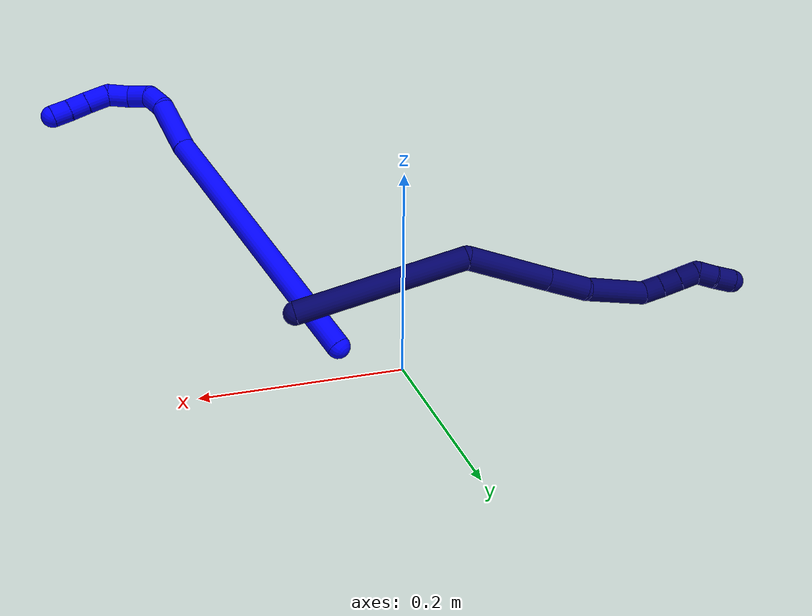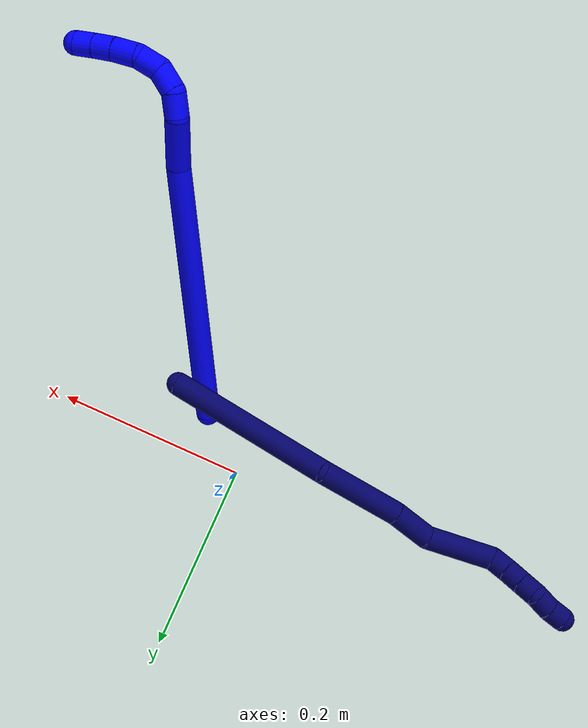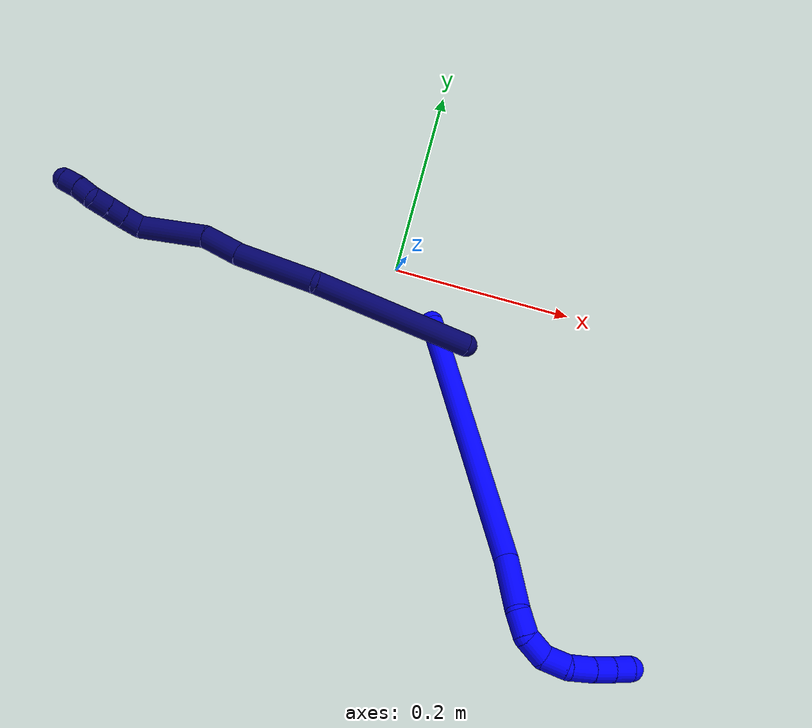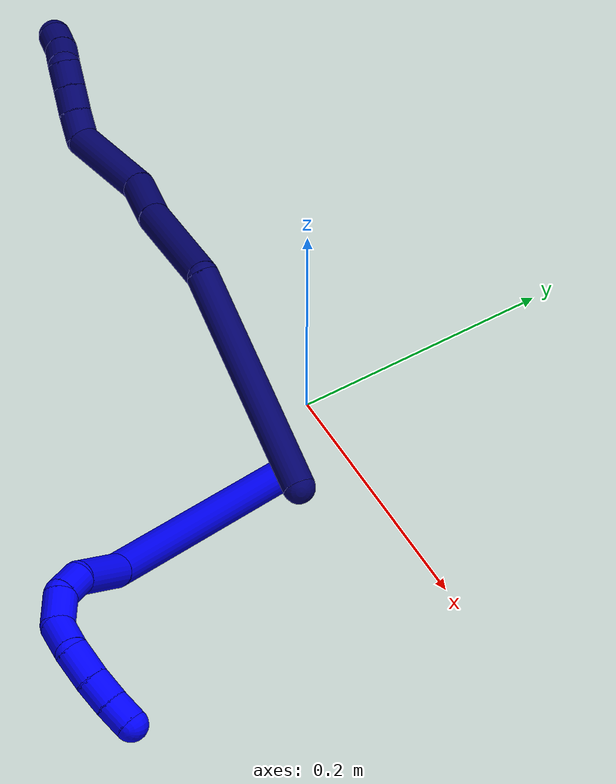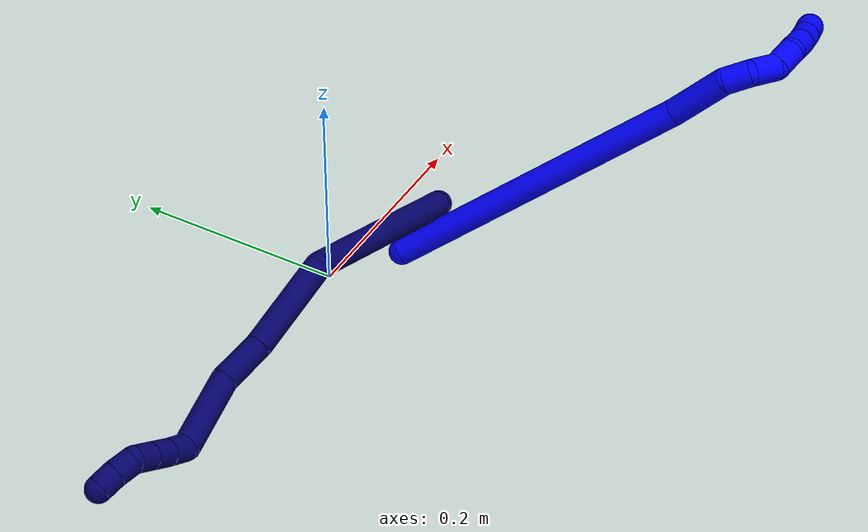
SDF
<sdf version="1.7">
 <world name="default">
  <model name="1">
   <static>0</static>
   <link name="1">
    <collision name="collision-cylinder-e_1_1_4">
     <pose>0.01469 -0.020997 0.14681 0.14206 0.098733 0.007031</pose>
     <geometry><cylinder><radius>0.0125</radius><length>0.298061</length></cylinder></geometry>
     <surface>
      <friction><ode><mu>1.16</mu><mu2>1.16</mu2><slip1>0</slip1><slip2>0</slip2></ode></friction>
      <contact><ode><kp>1e+06</kp><kd>1</kd><max_vel>0</max_vel><min_depth>0.001</min_depth></ode></contact>
     </surface>
    </collision>
    <visual name="visual-cylinder-e_1_1_4">
     <pose>0.01469 -0.020997 0.14681 0.14206 0.098733 0.007031</pose>
     <geometry><cylinder><radius>0.0125</radius><length>0.298061</length></cylinder></geometry>
     <material><ambient>0 0 1 1</ambient></material>
    </visual>
    <collision name="collision-cylinder-e_2_4_5">
     <pose>0.034722 -0.050012 0.320946 0.285379 0.185399 0.02671</pose>
     <geometry><cylinder><radius>0.0125</radius><length>0.057946</length></cylinder></geometry>
     <surface>
      <friction><ode><mu>1.16</mu><mu2>1.16</mu2><slip1>0</slip1><slip2>0</slip2></ode></friction>
      <contact><ode><kp>1e+06</kp><kd>1</kd><max_vel>0</max_vel><min_depth>0.001</min_depth></ode></contact>
     </surface>
    </collision>
    <visual name="visual-cylinder-e_2_4_5">
     <pose>0.034722 -0.050012 0.320946 0.285379 0.185399 0.02671</pose>
     <geometry><cylinder><radius>0.0125</radius><length>0.057946</length></cylinder></geometry>
     <material><ambient>0 0 1 1</ambient></material>
    </visual>
    <collision name="collision-cylinder-e_3_5_6">
     <pose>0.040855 -0.056942 0.361068 -0.084671 0.061662 -0.002613</pose>
     <geometry><cylinder><radius>0.0125</radius><length>0.025736</length></cylinder></geometry>
     <surface>
      <friction><ode><mu>1.16</mu><mu2>1.16</mu2><slip1>0</slip1><slip2>0</slip2></ode></friction>
      <contact><ode><kp>1e+06</kp><kd>1</kd><max_vel>0</max_vel><min_depth>0.001</min_depth></ode></contact>
     </surface>
    </collision>
    <visual name="visual-cylinder-e_3_5_6">
     <pose>0.040855 -0.056942 0.361068 -0.084671 0.061662 -0.002613</pose>
     <geometry><cylinder><radius>0.0125</radius><length>0.025736</length></cylinder></geometry>
     <material><ambient>0 0 1 1</ambient></material>
    </visual>
    <collision name="collision-cylinder-e_4_6_7">
     <pose>0.036616 -0.050254 0.384391 -0.489094 -0.399334 0.10091</pose>
     <geometry><cylinder><radius>0.0125</radius><length>0.025885</length></cylinder></geometry>
     <surface>
      <friction><ode><mu>1.16</mu><mu2>1.16</mu2><slip1>0</slip1><slip2>0</slip2></ode></friction>
      <contact><ode><kp>1e+06</kp><kd>1</kd><max_vel>0</max_vel><min_depth>0.001</min_depth></ode></contact>
     </surface>
    </collision>
    <visual name="visual-cylinder-e_4_6_7">
     <pose>0.036616 -0.050254 0.384391 -0.489094 -0.399334 0.10091</pose>
     <geometry><cylinder><radius>0.0125</radius><length>0.025885</length></cylinder></geometry>
     <material><ambient>0 0 1 1</ambient></material>
    </visual>
    <collision name="collision-cylinder-e_5_7_8">
     <pose>0.022232 -0.043344 0.402956 -0.161236 -0.854338 0.073521</pose>
     <geometry><cylinder><radius>0.0125</radius><length>0.024802</length></cylinder></geometry>
     <surface>
      <friction><ode><mu>1.16</mu><mu2>1.16</mu2><slip1>0</slip1><slip2>0</slip2></ode></friction>
      <contact><ode><kp>1e+06</kp><kd>1</kd><max_vel>0</max_vel><min_depth>0.001</min_depth></ode></contact>
     </surface>
    </collision>
    <visual name="visual-cylinder-e_5_7_8">
     <pose>0.022232 -0.043344 0.402956 -0.161236 -0.854338 0.073521</pose>
     <geometry><cylinder><radius>0.0125</radius><length>0.024802</length></cylinder></geometry>
     <material><ambient>0 0 1 1</ambient></material>
    </visual>
    <collision name="collision-cylinder-e_6_8_9">
     <pose>0.001599 -0.037132 0.414829 -0.907283 -1.0665 0.56045</pose>
     <geometry><cylinder><radius>0.0125</radius><length>0.02577</length></cylinder></geometry>
     <surface>
      <friction><ode><mu>1.16</mu><mu2>1.16</mu2><slip1>0</slip1><slip2>0</slip2></ode></friction>
      <contact><ode><kp>1e+06</kp><kd>1</kd><max_vel>0</max_vel><min_depth>0.001</min_depth></ode></contact>
     </surface>
    </collision>
    <visual name="visual-cylinder-e_6_8_9">
     <pose>0.001599 -0.037132 0.414829 -0.907283 -1.0665 0.56045</pose>
     <geometry><cylinder><radius>0.0125</radius><length>0.02577</length></cylinder></geometry>
     <material><ambient>0 0 1 1</ambient></material>
    </visual>
    <collision name="collision-cylinder-e_7_9_10">
     <pose>-0.019461 -0.028372 0.421044 -1.01745 -1.1369 0.684445</pose>
     <geometry><cylinder><radius>0.0125</radius><length>0.021556</length></cylinder></geometry>
     <surface>
      <friction><ode><mu>1.16</mu><mu2>1.16</mu2><slip1>0</slip1><slip2>0</slip2></ode></friction>
      <contact><ode><kp>1e+06</kp><kd>1</kd><max_vel>0</max_vel><min_depth>0.001</min_depth></ode></contact>
     </surface>
    </collision>
    <visual name="visual-cylinder-e_7_9_10">
     <pose>-0.019461 -0.028372 0.421044 -1.01745 -1.1369 0.684445</pose>
     <geometry><cylinder><radius>0.0125</radius><length>0.021556</length></cylinder></geometry>
     <material><ambient>0 0 1 1</ambient></material>
    </visual>
    <collision name="collision-cylinder-e_8_10_2">
     <pose>-0.038668 -0.021519 0.42557 -0.949847 -1.19812 0.675231</pose>
     <geometry><cylinder><radius>0.0125</radius><length>0.020246</length></cylinder></geometry>
     <surface>
      <friction><ode><mu>1.16</mu><mu2>1.16</mu2><slip1>0</slip1><slip2>0</slip2></ode></friction>
      <contact><ode><kp>1e+06</kp><kd>1</kd><max_vel>0</max_vel><min_depth>0.001</min_depth></ode></contact>
     </surface>
    </collision>
    <visual name="visual-cylinder-e_8_10_2">
     <pose>-0.038668 -0.021519 0.42557 -0.949847 -1.19812 0.675231</pose>
     <geometry><cylinder><radius>0.0125</radius><length>0.020246</length></cylinder></geometry>
     <material><ambient>0 0 1 1</ambient></material>
    </visual>
    <collision name="collision-sphere-2">
     <pose>-0.048096 -0.018521 0.427714 0 -0 0</pose>
     <geometry><sphere><radius>0.0125</radius></sphere></geometry>
     <surface>
      <friction><ode><mu>1.16</mu><mu2>1.16</mu2><slip1>0</slip1><slip2>0</slip2></ode></friction>
      <contact><ode><kp>1e+06</kp><kd>1</kd><max_vel>0</max_vel><min_depth>0.001</min_depth></ode></contact>
     </surface>
    </collision>
    <visual name="visual-sphere-2">
     <pose>-0.048096 -0.018521 0.427714 0 -0 0</pose>
     <geometry><sphere><radius>0.0125</radius></sphere></geometry>
     <material><ambient>0 0 1 1</ambient></material>
    </visual>
    <collision name="collision-sphere-10">
     <pose>-0.02924 -0.024517 0.423426 0 -0 0</pose>
     <geometry><sphere><radius>0.0125</radius></sphere></geometry>
     <surface>
      <friction><ode><mu>1.16</mu><mu2>1.16</mu2><slip1>0</slip1><slip2>0</slip2></ode></friction>
      <contact><ode><kp>1e+06</kp><kd>1</kd><max_vel>0</max_vel><min_depth>0.001</min_depth></ode></contact>
     </surface>
    </collision>
    <visual name="visual-sphere-10">
     <pose>-0.02924 -0.024517 0.423426 0 -0 0</pose>
     <geometry><sphere><radius>0.0125</radius></sphere></geometry>
     <material><ambient>0 0 1 1</ambient></material>
    </visual>
    <collision name="collision-sphere-9">
     <pose>-0.009682 -0.032227 0.418663 0 -0 0</pose>
     <geometry><sphere><radius>0.0125</radius></sphere></geometry>
     <surface>
      <friction><ode><mu>1.16</mu><mu2>1.16</mu2><slip1>0</slip1><slip2>0</slip2></ode></friction>
      <contact><ode><kp>1e+06</kp><kd>1</kd><max_vel>0</max_vel><min_depth>0.001</min_depth></ode></contact>
     </surface>
    </collision>
    <visual name="visual-sphere-9">
     <pose>-0.009682 -0.032227 0.418663 0 -0 0</pose>
     <geometry><sphere><radius>0.0125</radius></sphere></geometry>
     <material><ambient>0 0 1 1</ambient></material>
    </visual>
    <collision name="collision-sphere-4">
     <pose>0.029381 -0.041995 0.293621 0 -0 0</pose>
     <geometry><sphere><radius>0.0125</radius></sphere></geometry>
     <surface>
      <friction><ode><mu>1.16</mu><mu2>1.16</mu2><slip1>0</slip1><slip2>0</slip2></ode></friction>
      <contact><ode><kp>1e+06</kp><kd>1</kd><max_vel>0</max_vel><min_depth>0.001</min_depth></ode></contact>
     </surface>
    </collision>
    <visual name="visual-sphere-4">
     <pose>0.029381 -0.041995 0.293621 0 -0 0</pose>
     <geometry><sphere><radius>0.0125</radius></sphere></geometry>
     <material><ambient>0 0 1 1</ambient></material>
    </visual>
    <collision name="collision-sphere-1">
     <geometry><sphere><radius>0.0125</radius></sphere></geometry>
     <surface>
      <friction><ode><mu>1.16</mu><mu2>1.16</mu2><slip1>0</slip1><slip2>0</slip2></ode></friction>
      <contact><ode><kp>1e+06</kp><kd>1</kd><max_vel>0</max_vel><min_depth>0.001</min_depth></ode></contact>
     </surface>
    </collision>
    <visual name="visual-sphere-1">
     <geometry><sphere><radius>0.0125</radius></sphere></geometry>
     <material><ambient>0 0 1 1</ambient></material>
    </visual>
    <collision name="collision-sphere-8">
     <pose>0.01288 -0.042037 0.410994 0 -0 0</pose>
     <geometry><sphere><radius>0.0125</radius></sphere></geometry>
     <surface>
      <friction><ode><mu>1.16</mu><mu2>1.16</mu2><slip1>0</slip1><slip2>0</slip2></ode></friction>
      <contact><ode><kp>1e+06</kp><kd>1</kd><max_vel>0</max_vel><min_depth>0.001</min_depth></ode></contact>
     </surface>
    </collision>
    <visual name="visual-sphere-8">
     <pose>0.01288 -0.042037 0.410994 0 -0 0</pose>
     <geometry><sphere><radius>0.0125</radius></sphere></geometry>
     <material><ambient>0 0 1 1</ambient></material>
    </visual>
    <collision name="collision-sphere-5">
     <pose>0.040062 -0.058028 0.34827 0 -0 0</pose>
     <geometry><sphere><radius>0.0125</radius></sphere></geometry>
     <surface>
      <friction><ode><mu>1.16</mu><mu2>1.16</mu2><slip1>0</slip1><slip2>0</slip2></ode></friction>
      <contact><ode><kp>1e+06</kp><kd>1</kd><max_vel>0</max_vel><min_depth>0.001</min_depth></ode></contact>
     </surface>
    </collision>
    <visual name="visual-sphere-5">
     <pose>0.040062 -0.058028 0.34827 0 -0 0</pose>
     <geometry><sphere><radius>0.0125</radius></sphere></geometry>
     <material><ambient>0 0 1 1</ambient></material>
    </visual>
    <collision name="collision-sphere-6">
     <pose>0.041648 -0.055856 0.373865 0 -0 0</pose>
     <geometry><sphere><radius>0.0125</radius></sphere></geometry>
     <surface>
      <friction><ode><mu>1.16</mu><mu2>1.16</mu2><slip1>0</slip1><slip2>0</slip2></ode></friction>
      <contact><ode><kp>1e+06</kp><kd>1</kd><max_vel>0</max_vel><min_depth>0.001</min_depth></ode></contact>
     </surface>
    </collision>
    <visual name="visual-sphere-6">
     <pose>0.041648 -0.055856 0.373865 0 -0 0</pose>
     <geometry><sphere><radius>0.0125</radius></sphere></geometry>
     <material><ambient>0 0 1 1</ambient></material>
    </visual>
    <collision name="collision-sphere-7">
     <pose>0.031584 -0.044651 0.394917 0 -0 0</pose>
     <geometry><sphere><radius>0.0125</radius></sphere></geometry>
     <surface>
      <friction><ode><mu>1.16</mu><mu2>1.16</mu2><slip1>0</slip1><slip2>0</slip2></ode></friction>
      <contact><ode><kp>1e+06</kp><kd>1</kd><max_vel>0</max_vel><min_depth>0.001</min_depth></ode></contact>
     </surface>
    </collision>
    <visual name="visual-sphere-7">
     <pose>0.031584 -0.044651 0.394917 0 -0 0</pose>
     <geometry><sphere><radius>0.0125</radius></sphere></geometry>
     <material><ambient>0 0 1 1</ambient></material>
    </visual>
    <inertial>
     <pose>0.01556 -0.030004 0.239948 0 -0 0</pose>
     <mass>0.5</mass>
     <inertia>
      <ixx>0.002248</ixx>
      <ixy>0</ixy>
      <ixz>0</ixz>
      <iyy>0.002242</iyy>
      <iyz>0</iyz>
      <izz>0.000133</izz>
     </inertia>
    </inertial>
   </link>
   <pose>0.053611 -0.046879 0.011493 -1.1229 -0.090207 -2.56875</pose>
  </model>
  <model name="7">
   <static>0</static>
   <link name="7">
    <collision name="collision-cylinder-e_1_1_4">
     <pose>-0.067394 -0.023497 0.057776 0.386256 -0.824086 -0.170534</pose>
     <geometry><cylinder><radius>0.0125</radius><length>0.183653</length></cylinder></geometry>
     <surface>
      <friction><ode><mu>1.16</mu><mu2>1.16</mu2><slip1>0</slip1><slip2>0</slip2></ode></friction>
      <contact><ode><kp>1e+06</kp><kd>1</kd><max_vel>0</max_vel><min_depth>0.001</min_depth></ode></contact>
     </surface>
    </collision>
    <visual name="visual-cylinder-e_1_1_4">
     <pose>-0.067394 -0.023497 0.057776 0.386256 -0.824086 -0.170534</pose>
     <geometry><cylinder><radius>0.0125</radius><length>0.183653</length></cylinder></geometry>
     <material><ambient>0.003922 0 0.403922 1</ambient></material>
    </visual>
    <collision name="collision-cylinder-e_2_4_5">
     <pose>-0.150655 -0.044848 0.159703 -0.048556 -0.34464 0.008453</pose>
     <geometry><cylinder><radius>0.0125</radius><length>0.093928</length></cylinder></geometry>
     <surface>
      <friction><ode><mu>1.16</mu><mu2>1.16</mu2><slip1>0</slip1><slip2>0</slip2></ode></friction>
      <contact><ode><kp>1e+06</kp><kd>1</kd><max_vel>0</max_vel><min_depth>0.001</min_depth></ode></contact>
     </surface>
    </collision>
    <visual name="visual-cylinder-e_2_4_5">
     <pose>-0.150655 -0.044848 0.159703 -0.048556 -0.34464 0.008453</pose>
     <geometry><cylinder><radius>0.0125</radius><length>0.093928</length></cylinder></geometry>
     <material><ambient>0.003922 0 0.403922 1</ambient></material>
    </visual>
    <collision name="collision-cylinder-e_3_5_6">
     <pose>-0.173406 -0.044661 0.224724 0.09355 -0.317269 -0.014977</pose>
     <geometry><cylinder><radius>0.0125</radius><length>0.044127</length></cylinder></geometry>
     <surface>
      <friction><ode><mu>1.16</mu><mu2>1.16</mu2><slip1>0</slip1><slip2>0</slip2></ode></friction>
      <contact><ode><kp>1e+06</kp><kd>1</kd><max_vel>0</max_vel><min_depth>0.001</min_depth></ode></contact>
     </surface>
    </collision>
    <visual name="visual-cylinder-e_3_5_6">
     <pose>-0.173406 -0.044661 0.224724 0.09355 -0.317269 -0.014977</pose>
     <geometry><cylinder><radius>0.0125</radius><length>0.044127</length></cylinder></geometry>
     <material><ambient>0.003922 0 0.403922 1</ambient></material>
    </visual>
    <collision name="collision-cylinder-e_4_6_7">
     <pose>-0.199655 -0.040466 0.277802 -0.188746 -0.533482 0.051717</pose>
     <geometry><cylinder><radius>0.0125</radius><length>0.076165</length></cylinder></geometry>
     <surface>
      <friction><ode><mu>1.16</mu><mu2>1.16</mu2><slip1>0</slip1><slip2>0</slip2></ode></friction>
      <contact><ode><kp>1e+06</kp><kd>1</kd><max_vel>0</max_vel><min_depth>0.001</min_depth></ode></contact>
     </surface>
    </collision>
    <visual name="visual-cylinder-e_4_6_7">
     <pose>-0.199655 -0.040466 0.277802 -0.188746 -0.533482 0.051717</pose>
     <geometry><cylinder><radius>0.0125</radius><length>0.076165</length></cylinder></geometry>
     <material><ambient>0.003922 0 0.403922 1</ambient></material>
    </visual>
    <collision name="collision-cylinder-e_5_7_8">
     <pose>-0.226779 -0.038714 0.316237 0.615226 -0.794074 -0.264865</pose>
     <geometry><cylinder><radius>0.0125</radius><length>0.021752</length></cylinder></geometry>
     <surface>
      <friction><ode><mu>1.16</mu><mu2>1.16</mu2><slip1>0</slip1><slip2>0</slip2></ode></friction>
      <contact><ode><kp>1e+06</kp><kd>1</kd><max_vel>0</max_vel><min_depth>0.001</min_depth></ode></contact>
     </surface>
    </collision>
    <visual name="visual-cylinder-e_5_7_8">
     <pose>-0.226779 -0.038714 0.316237 0.615226 -0.794074 -0.264865</pose>
     <geometry><cylinder><radius>0.0125</radius><length>0.021752</length></cylinder></geometry>
     <material><ambient>0.003922 0 0.403922 1</ambient></material>
    </visual>
    <collision name="collision-cylinder-e_6_8_9">
     <pose>-0.241793 -0.047718 0.327875 0.704897 -0.795956 -0.30683</pose>
     <geometry><cylinder><radius>0.0125</radius><length>0.020313</length></cylinder></geometry>
     <surface>
      <friction><ode><mu>1.16</mu><mu2>1.16</mu2><slip1>0</slip1><slip2>0</slip2></ode></friction>
      <contact><ode><kp>1e+06</kp><kd>1</kd><max_vel>0</max_vel><min_depth>0.001</min_depth></ode></contact>
     </surface>
    </collision>
    <visual name="visual-cylinder-e_6_8_9">
     <pose>-0.241793 -0.047718 0.327875 0.704897 -0.795956 -0.30683</pose>
     <geometry><cylinder><radius>0.0125</radius><length>0.020313</length></cylinder></geometry>
     <material><ambient>0.003922 0 0.403922 1</ambient></material>
    </visual>
    <collision name="collision-cylinder-e_7_9_10">
     <pose>-0.25623 -0.056811 0.338626 0.699175 -0.799838 -0.305793</pose>
     <geometry><cylinder><radius>0.0125</radius><length>0.020022</length></cylinder></geometry>
     <surface>
      <friction><ode><mu>1.16</mu><mu2>1.16</mu2><slip1>0</slip1><slip2>0</slip2></ode></friction>
      <contact><ode><kp>1e+06</kp><kd>1</kd><max_vel>0</max_vel><min_depth>0.001</min_depth></ode></contact>
     </surface>
    </collision>
    <visual name="visual-cylinder-e_7_9_10">
     <pose>-0.25623 -0.056811 0.338626 0.699175 -0.799838 -0.305793</pose>
     <geometry><cylinder><radius>0.0125</radius><length>0.020022</length></cylinder></geometry>
     <material><ambient>0.003922 0 0.403922 1</ambient></material>
    </visual>
    <collision name="collision-cylinder-e_8_10_11">
     <pose>-0.265908 -0.06364 0.353378 0.243569 -0.252031 -0.031008</pose>
     <geometry><cylinder><radius>0.0125</radius><length>0.020031</length></cylinder></geometry>
     <surface>
      <friction><ode><mu>1.16</mu><mu2>1.16</mu2><slip1>0</slip1><slip2>0</slip2></ode></friction>
      <contact><ode><kp>1e+06</kp><kd>1</kd><max_vel>0</max_vel><min_depth>0.001</min_depth></ode></contact>
     </surface>
    </collision>
    <visual name="visual-cylinder-e_8_10_11">
     <pose>-0.265908 -0.06364 0.353378 0.243569 -0.252031 -0.031008</pose>
     <geometry><cylinder><radius>0.0125</radius><length>0.020031</length></cylinder></geometry>
     <material><ambient>0.003922 0 0.403922 1</ambient></material>
    </visual>
    <collision name="collision-cylinder-e_9_11_2">
     <pose>-0.271868 -0.06717 0.3721 0.127225 -0.353452 -0.022751</pose>
     <geometry><cylinder><radius>0.0125</radius><length>0.020008</length></cylinder></geometry>
     <surface>
      <friction><ode><mu>1.16</mu><mu2>1.16</mu2><slip1>0</slip1><slip2>0</slip2></ode></friction>
      <contact><ode><kp>1e+06</kp><kd>1</kd><max_vel>0</max_vel><min_depth>0.001</min_depth></ode></contact>
     </surface>
    </collision>
    <visual name="visual-cylinder-e_9_11_2">
     <pose>-0.271868 -0.06717 0.3721 0.127225 -0.353452 -0.022751</pose>
     <geometry><cylinder><radius>0.0125</radius><length>0.020008</length></cylinder></geometry>
     <material><ambient>0.003922 0 0.403922 1</ambient></material>
    </visual>
    <collision name="collision-sphere-2">
     <pose>-0.275331 -0.068361 0.38141 0 -0 0</pose>
     <geometry><sphere><radius>0.0125</radius></sphere></geometry>
     <surface>
      <friction><ode><mu>1.16</mu><mu2>1.16</mu2><slip1>0</slip1><slip2>0</slip2></ode></friction>
      <contact><ode><kp>1e+06</kp><kd>1</kd><max_vel>0</max_vel><min_depth>0.001</min_depth></ode></contact>
     </surface>
    </collision>
    <visual name="visual-sphere-2">
     <pose>-0.275331 -0.068361 0.38141 0 -0 0</pose>
     <geometry><sphere><radius>0.0125</radius></sphere></geometry>
     <material><ambient>0.003922 0 0.403922 1</ambient></material>
    </visual>
    <collision name="collision-sphere-11">
     <pose>-0.268406 -0.065979 0.362791 0 -0 0</pose>
     <geometry><sphere><radius>0.0125</radius></sphere></geometry>
     <surface>
      <friction><ode><mu>1.16</mu><mu2>1.16</mu2><slip1>0</slip1><slip2>0</slip2></ode></friction>
      <contact><ode><kp>1e+06</kp><kd>1</kd><max_vel>0</max_vel><min_depth>0.001</min_depth></ode></contact>
     </surface>
    </collision>
    <visual name="visual-sphere-11">
     <pose>-0.268406 -0.065979 0.362791 0 -0 0</pose>
     <geometry><sphere><radius>0.0125</radius></sphere></geometry>
     <material><ambient>0.003922 0 0.403922 1</ambient></material>
    </visual>
    <collision name="collision-sphere-10">
     <pose>-0.26341 -0.061301 0.343965 0 -0 0</pose>
     <geometry><sphere><radius>0.0125</radius></sphere></geometry>
     <surface>
      <friction><ode><mu>1.16</mu><mu2>1.16</mu2><slip1>0</slip1><slip2>0</slip2></ode></friction>
      <contact><ode><kp>1e+06</kp><kd>1</kd><max_vel>0</max_vel><min_depth>0.001</min_depth></ode></contact>
     </surface>
    </collision>
    <visual name="visual-sphere-10">
     <pose>-0.26341 -0.061301 0.343965 0 -0 0</pose>
     <geometry><sphere><radius>0.0125</radius></sphere></geometry>
     <material><ambient>0.003922 0 0.403922 1</ambient></material>
    </visual>
    <collision name="collision-sphere-9">
     <pose>-0.24905 -0.052322 0.333287 0 -0 0</pose>
     <geometry><sphere><radius>0.0125</radius></sphere></geometry>
     <surface>
      <friction><ode><mu>1.16</mu><mu2>1.16</mu2><slip1>0</slip1><slip2>0</slip2></ode></friction>
      <contact><ode><kp>1e+06</kp><kd>1</kd><max_vel>0</max_vel><min_depth>0.001</min_depth></ode></contact>
     </surface>
    </collision>
    <visual name="visual-sphere-9">
     <pose>-0.24905 -0.052322 0.333287 0 -0 0</pose>
     <geometry><sphere><radius>0.0125</radius></sphere></geometry>
     <material><ambient>0.003922 0 0.403922 1</ambient></material>
    </visual>
    <collision name="collision-sphere-4">
     <pose>-0.134788 -0.046993 0.115552 0 -0 0</pose>
     <geometry><sphere><radius>0.0125</radius></sphere></geometry>
     <surface>
      <friction><ode><mu>1.16</mu><mu2>1.16</mu2><slip1>0</slip1><slip2>0</slip2></ode></friction>
      <contact><ode><kp>1e+06</kp><kd>1</kd><max_vel>0</max_vel><min_depth>0.001</min_depth></ode></contact>
     </surface>
    </collision>
    <visual name="visual-sphere-4">
     <pose>-0.134788 -0.046993 0.115552 0 -0 0</pose>
     <geometry><sphere><radius>0.0125</radius></sphere></geometry>
     <material><ambient>0.003922 0 0.403922 1</ambient></material>
    </visual>
    <collision name="collision-sphere-1">
     <geometry><sphere><radius>0.0125</radius></sphere></geometry>
     <surface>
      <friction><ode><mu>1.16</mu><mu2>1.16</mu2><slip1>0</slip1><slip2>0</slip2></ode></friction>
      <contact><ode><kp>1e+06</kp><kd>1</kd><max_vel>0</max_vel><min_depth>0.001</min_depth></ode></contact>
     </surface>
    </collision>
    <visual name="visual-sphere-1">
     <geometry><sphere><radius>0.0125</radius></sphere></geometry>
     <material><ambient>0.003922 0 0.403922 1</ambient></material>
    </visual>
    <collision name="collision-sphere-8">
     <pose>-0.234536 -0.043114 0.322462 0 -0 0</pose>
     <geometry><sphere><radius>0.0125</radius></sphere></geometry>
     <surface>
      <friction><ode><mu>1.16</mu><mu2>1.16</mu2><slip1>0</slip1><slip2>0</slip2></ode></friction>
      <contact><ode><kp>1e+06</kp><kd>1</kd><max_vel>0</max_vel><min_depth>0.001</min_depth></ode></contact>
     </surface>
    </collision>
    <visual name="visual-sphere-8">
     <pose>-0.234536 -0.043114 0.322462 0 -0 0</pose>
     <geometry><sphere><radius>0.0125</radius></sphere></geometry>
     <material><ambient>0.003922 0 0.403922 1</ambient></material>
    </visual>
    <collision name="collision-sphere-5">
     <pose>-0.166522 -0.042702 0.203853 0 -0 0</pose>
     <geometry><sphere><radius>0.0125</radius></sphere></geometry>
     <surface>
      <friction><ode><mu>1.16</mu><mu2>1.16</mu2><slip1>0</slip1><slip2>0</slip2></ode></friction>
      <contact><ode><kp>1e+06</kp><kd>1</kd><max_vel>0</max_vel><min_depth>0.001</min_depth></ode></contact>
     </surface>
    </collision>
    <visual name="visual-sphere-5">
     <pose>-0.166522 -0.042702 0.203853 0 -0 0</pose>
     <geometry><sphere><radius>0.0125</radius></sphere></geometry>
     <material><ambient>0.003922 0 0.403922 1</ambient></material>
    </visual>
    <collision name="collision-sphere-6">
     <pose>-0.180289 -0.046619 0.245594 0 -0 0</pose>
     <geometry><sphere><radius>0.0125</radius></sphere></geometry>
     <surface>
      <friction><ode><mu>1.16</mu><mu2>1.16</mu2><slip1>0</slip1><slip2>0</slip2></ode></friction>
      <contact><ode><kp>1e+06</kp><kd>1</kd><max_vel>0</max_vel><min_depth>0.001</min_depth></ode></contact>
     </surface>
    </collision>
    <visual name="visual-sphere-6">
     <pose>-0.180289 -0.046619 0.245594 0 -0 0</pose>
     <geometry><sphere><radius>0.0125</radius></sphere></geometry>
     <material><ambient>0.003922 0 0.403922 1</ambient></material>
    </visual>
    <collision name="collision-sphere-7">
     <pose>-0.219022 -0.034314 0.310011 0 -0 0</pose>
     <geometry><sphere><radius>0.0125</radius></sphere></geometry>
     <surface>
      <friction><ode><mu>1.16</mu><mu2>1.16</mu2><slip1>0</slip1><slip2>0</slip2></ode></friction>
      <contact><ode><kp>1e+06</kp><kd>1</kd><max_vel>0</max_vel><min_depth>0.001</min_depth></ode></contact>
     </surface>
    </collision>
    <visual name="visual-sphere-7">
     <pose>-0.219022 -0.034314 0.310011 0 -0 0</pose>
     <geometry><sphere><radius>0.0125</radius></sphere></geometry>
     <material><ambient>0.003922 0 0.403922 1</ambient></material>
    </visual>
    <inertial>
     <pose>-0.150255 -0.038296 0.183058 0 -0 0</pose>
     <mass>0.5</mass>
     <inertia>
      <ixx>0.000387</ixx>
      <ixy>0</ixy>
      <ixz>0</ixz>
      <iyy>0.000566</iyy>
      <iyz>0</iyz>
      <izz>0.000593</izz>
     </inertia>
    </inertial>
   </link>
   <pose>0.093735 -0.062847 0.046969 -2.43118 0.731913 0.559846</pose>
  </model>
 </world>
</sdf>
